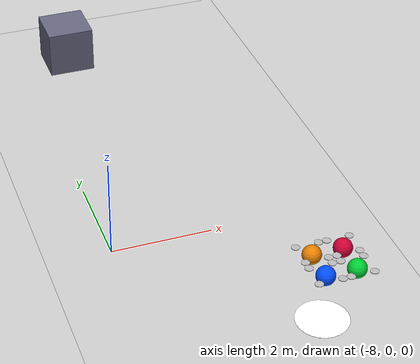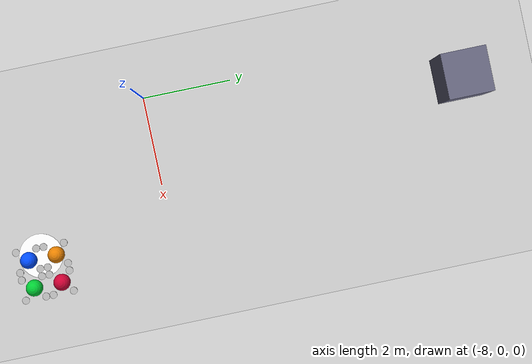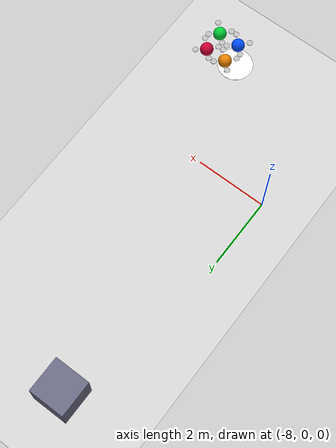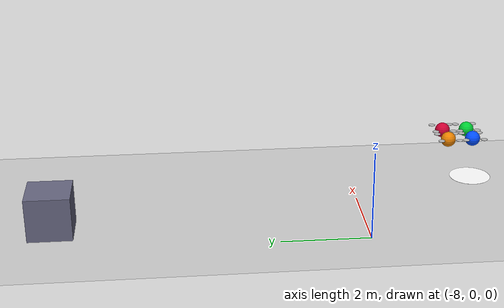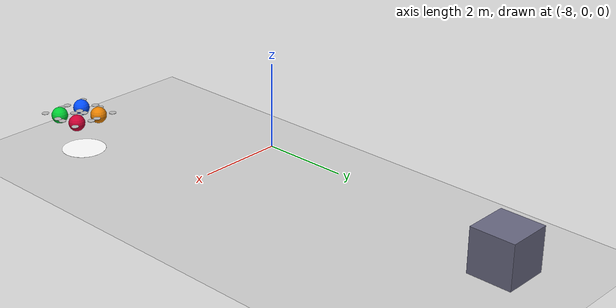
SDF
<?xml version="1.0" ?>
<sdf version="1.8">
  <world name="stage_2_easy.sdf">

    <!-- Physics -->
    <physics name="2ms" type="ignored">
      <max_step_size>0.002</max_step_size>
      <real_time_factor>0</real_time_factor>
    </physics>

    <!-- Plugins -->
    <plugin filename="gz-sim-physics-system" name="gz::sim::systems::Physics"/>
    <plugin filename="gz-sim-user-commands-system" name="gz::sim::systems::UserCommands"/>
    <plugin filename="gz-sim-sensors-system" name="gz::sim::systems::Sensors">
      <render_engine>ogre2</render_engine>
    </plugin>
    <plugin filename="gz-sim-imu-system" name="gz::sim::systems::Imu"/>

    <!-- Lighting -->
    <light type="directional" name="sun">
      <cast_shadows>true</cast_shadows>
      <pose>0 0 10 0 0 0</pose>
      <diffuse>0.8 0.8 0.8 1</diffuse>
      <specular>0.2 0.2 0.2 1</specular>
      <attenuation>
        <range>1000</range>
        <constant>0.9</constant>
        <linear>0.01</linear>
        <quadratic>0.001</quadratic>
      </attenuation>
      <direction>-0.5 0.1 -0.9</direction>
    </light>

    <!-- Ground Plane -->
    <model name="ground_plane">
      <static>true</static>
      <link name="link">
        <collision name="collision">
          <geometry>
            <plane>
              <normal>0 0 1</normal>
              <size>200 200</size>
            </plane>
          </geometry>
        </collision>
        <visual name="visual">
          <geometry>
            <plane>
              <normal>0 0 1</normal>
              <size>200 200</size>
            </plane>
          </geometry>
          <material>
            <ambient>0.8 0.8 0.8 1</ambient>
            <diffuse>0.8 0.8 0.8 1</diffuse>
          </material>
        </visual>
      </link>
    </model>

    <!-- 1 small obstacle for easy obstacle-introduction stage -->
    <model name="wall_0">
      <static>true</static>
      <pose>-7.0 7.0 0.5 0 0 0</pose>
      <link name="link">
        <collision name="collision">
          <geometry>
            <box>
              <size>1.0 1.0 1.0</size>
            </box>
          </geometry>
        </collision>
        <visual name="visual">
          <geometry>
            <box>
              <size>1.0 1.0 1.0</size>
            </box>
          </geometry>
          <material>
            <ambient>0.3 0.3 0.4 1</ambient>
            <diffuse>0.4 0.4 0.5 1</diffuse>
          </material>
        </visual>
      </link>
    </model>

    <!-- Start Point (Green) -->
    <model name="start_marker">
      <static>true</static>
      <pose>-5.0 -3.0 0.001 0 0 0</pose>
      <link name="link">
        <visual name="visual">
          <geometry>
            <cylinder>
              <radius>0.5</radius>
              <length>0.002</length>
            </cylinder>
          </geometry>
          <material>
            <ambient>1 1 1 1</ambient>
            <diffuse>1 1 1 1</diffuse>
            <emissive>0 0 0 1</emissive>
          </material>
        </visual>
      </link>
    </model>
    <!-- Multi-UAV agents (each uses its own cmd_vel/odom namespace) -->
    <include>
      <uri>file:///home/aiz/下载/基于ROS2 Jazzy与Gazebo Harmonic仿真环境的迷宫求解机器人(2)/src/models/uav1</uri>
      <name>uav1</name>
      <pose>-5.000 -3.000 1.00 0 0 0</pose>
    </include>

    <include>
      <uri>file:///home/aiz/下载/基于ROS2 Jazzy与Gazebo Harmonic仿真环境的迷宫求解机器人(2)/src/models/uav2</uri>
      <name>uav2</name>
      <pose>-4.400 -3.000 1.00 0 0 0</pose>
    </include>

    <include>
      <uri>file:///home/aiz/下载/基于ROS2 Jazzy与Gazebo Harmonic仿真环境的迷宫求解机器人(2)/src/models/uav3</uri>
      <name>uav3</name>
      <pose>-5.000 -2.400 1.00 0 0 0</pose>
    </include>

    <include>
      <uri>file:///home/aiz/下载/基于ROS2 Jazzy与Gazebo Harmonic仿真环境的迷宫求解机器人(2)/src/models/uav4</uri>
      <name>uav4</name>
      <pose>-4.400 -2.400 1.00 0 0 0</pose>
    </include>

  </world>
</sdf>
